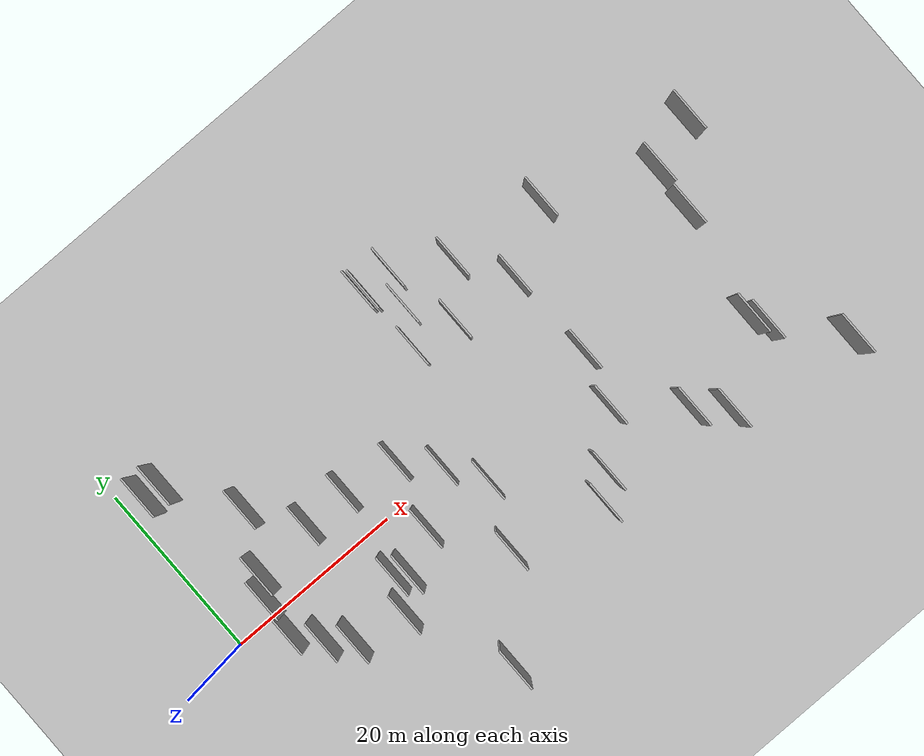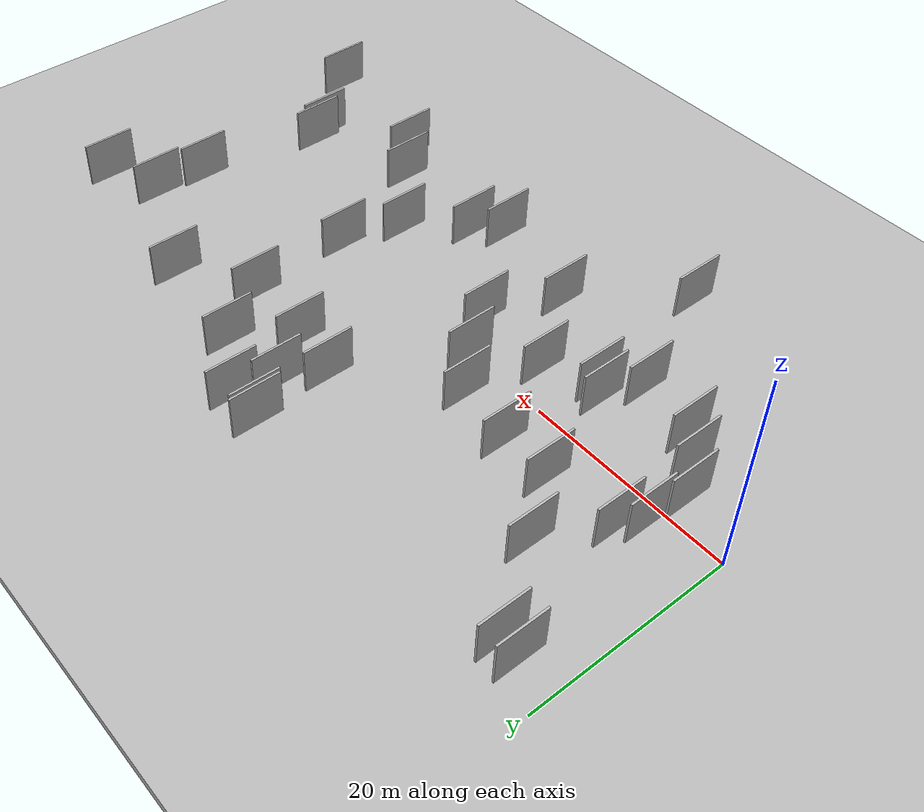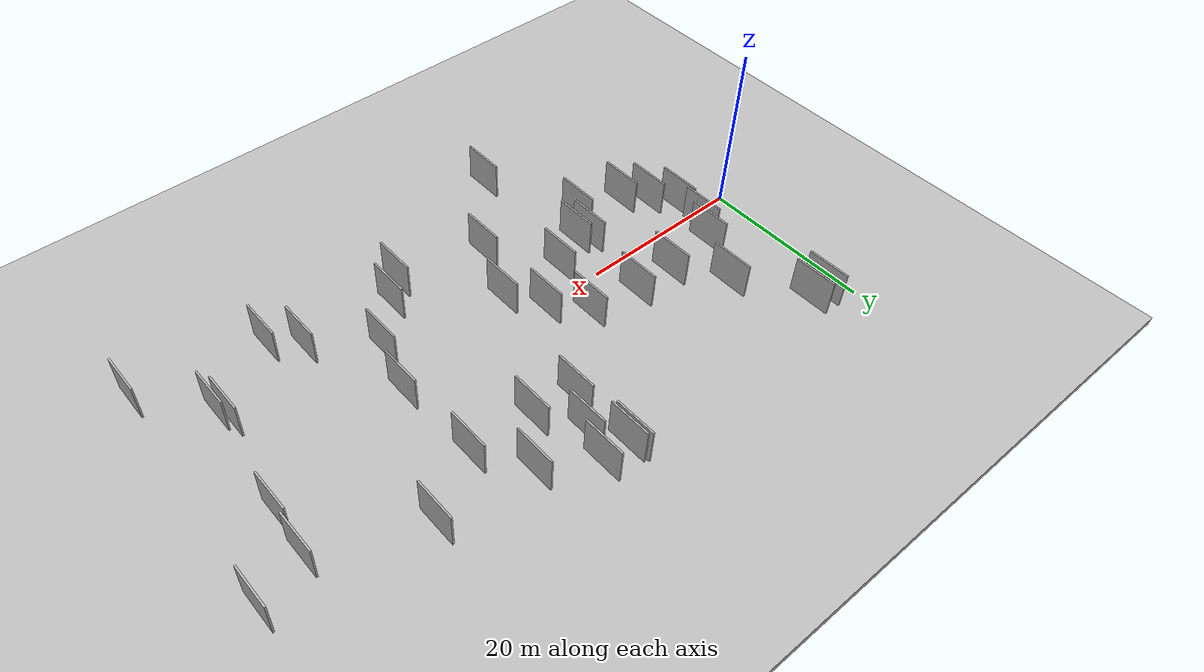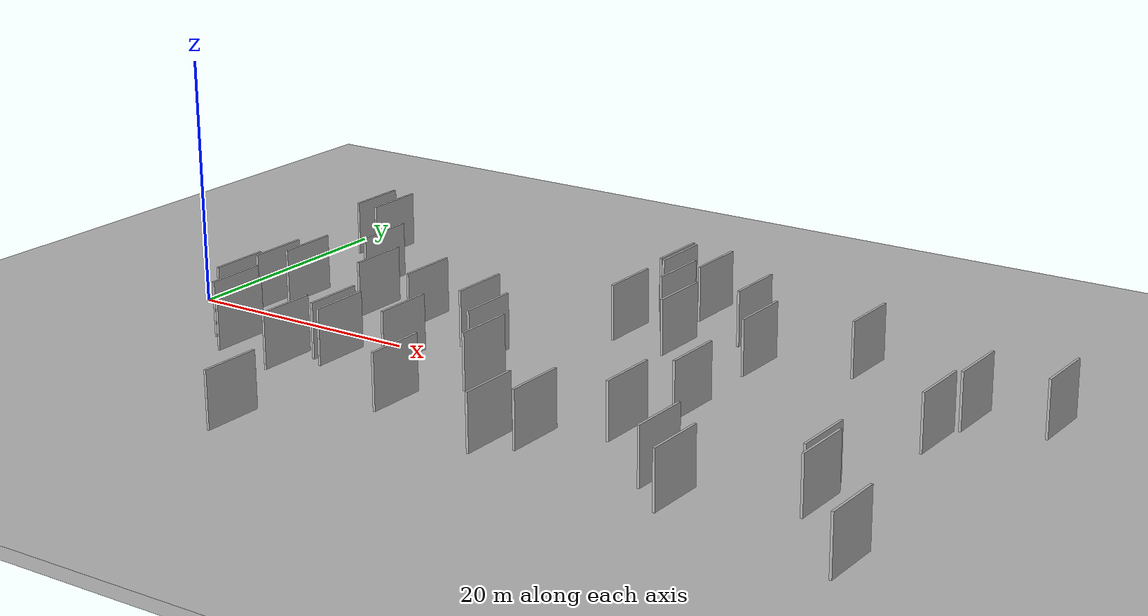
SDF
<?xml version="1.0" encoding="utf-8"?>

<sdf version="1.6">

   <world name="default">

      <gui fullscreen="0">

         <camera name="user_camera">

            <pose>-15 0 4.57585 0 0 0</pose>

            <view_controller>orbit</view_controller>

         </camera>

      </gui>

      <scene>

         <sky>

           <clouds>

             <speed>12</speed>

           </clouds>

         </sky>

         <ambient>0.4 0.4 0.4 1</ambient>

         <background>0.7 0.7 0.7 1</background>

         <shadows>1</shadows>

      </scene>

      <gravity>0 0 -9.8066</gravity>

      <magnetic_field>6e-06 2.3e-05 -4.2e-05</magnetic_field>

      <physics default="0" name="default_physics" type="ode">

         <ode>

            <solver>

               <type>quick</type>

               <iters>10</iters>

               <sor>1.0</sor>

               <use_dynamic_moi_rescaling>0</use_dynamic_moi_rescaling>

            </solver>

            <constraints>

               <cfm>0</cfm>

               <erp>0.2</erp>

               <contact_max_correcting_vel>100</contact_max_correcting_vel>

               <contact_surface_layer>0.001</contact_surface_layer>

            </constraints>

         </ode>

         <max_step_size>0.004</max_step_size>

         <real_time_factor>1</real_time_factor>

         <real_time_update_rate>250</real_time_update_rate>

      </physics>

      <light name="sun" type="directional">

         <cast_shadows>1</cast_shadows>

         <pose>0 0 10 0 0 0</pose>

         <diffuse>0.8 0.8 0.8 1</diffuse>

         <specular>0.2 0.2 0.2 1</specular>

         <attenuation>

            <range>1000</range>

            <constant>0.9</constant>

            <linear>0.01</linear>

            <quadratic>0.001</quadratic>

         </attenuation>

         <direction>-0.5 0.1 -0.9</direction>

      </light>

      <include>

         <name>ground_plane_1</name>

         <uri>model://HANNAS_ground_plane</uri>

         <pose>0 0 0  0 0 0</pose>

      </include>

      <include>

         <name>ground_plane_2</name>

         <uri>model://HANNAS_ground_plane</uri>

         <pose>100 0 0  0 0 0</pose>

      </include>

      <model name="HANNAS_wall_1">

         <static>1</static>

         <pose frame="">22.9563 -3.0702 0.0 0.000000 0.000000 1.570796</pose>

         <link name="link">

            <pose frame="">0 0 2.50 0 0 0</pose>

            <collision name="collision">

               <geometry>

                  <box>

                     <size>5.00 0.2 5.00</size>

                  </box>

               </geometry>

               <max_contacts>10</max_contacts>

               <surface>

                  <contact>

                     <ode/>

                  </contact>

                  <bounce/>

                  <friction>

                     <torsional>

                        <ode/>

                     </torsional>

                     <ode/>

                  </friction>

               </surface>

            </collision>

            <visual name="visual">

               <cast_shadows>0</cast_shadows>

               <geometry>

                  <box>

                     <size>5.00 0.2 5.00</size>

                  </box>

               </geometry>

               <material>

                  <script>

                     <uri>model://HANNAS_wall/materials/scripts</uri>

                     <uri>model://HANNAS_wall/materials/textures</uri>

                     <name>vrc/HANNAS_wall</name>

                  </script>

               </material>

            </visual>

            <self_collide>0</self_collide>

            <enable_wind>0</enable_wind>

            <kinematic>0</kinematic>

         </link>

      </model>

      <model name="HANNAS_wall_2">

         <static>1</static>

         <pose frame="">38.7629 10.8654 0.0 0.000000 0.000000 1.570796</pose>

         <link name="link">

            <pose frame="">0 0 2.50 0 0 0</pose>

            <collision name="collision">

               <geometry>

                  <box>

                     <size>5.00 0.2 5.00</size>

                  </box>

               </geometry>

               <max_contacts>10</max_contacts>

               <surface>

                  <contact>

                     <ode/>

                  </contact>

                  <bounce/>

                  <friction>

                     <torsional>

                        <ode/>

                     </torsional>

                     <ode/>

                  </friction>

               </surface>

            </collision>

            <visual name="visual">

               <cast_shadows>0</cast_shadows>

               <geometry>

                  <box>

                     <size>5.00 0.2 5.00</size>

                  </box>

               </geometry>

               <material>

                  <script>

                     <uri>model://HANNAS_wall/materials/scripts</uri>

                     <uri>model://HANNAS_wall/materials/textures</uri>

                     <name>vrc/HANNAS_wall</name>

                  </script>

               </material>

            </visual>

            <self_collide>0</self_collide>

            <enable_wind>0</enable_wind>

            <kinematic>0</kinematic>

         </link>

      </model>

      <model name="HANNAS_wall_3">

         <static>1</static>

         <pose frame="">18.9470 5.0243 0.0 0.000000 0.000000 1.570796</pose>

         <link name="link">

            <pose frame="">0 0 2.50 0 0 0</pose>

            <collision name="collision">

               <geometry>

                  <box>

                     <size>5.00 0.2 5.00</size>

                  </box>

               </geometry>

               <max_contacts>10</max_contacts>

               <surface>

                  <contact>

                     <ode/>

                  </contact>

                  <bounce/>

                  <friction>

                     <torsional>

                        <ode/>

                     </torsional>

                     <ode/>

                  </friction>

               </surface>

            </collision>

            <visual name="visual">

               <cast_shadows>0</cast_shadows>

               <geometry>

                  <box>

                     <size>5.00 0.2 5.00</size>

                  </box>

               </geometry>

               <material>

                  <script>

                     <uri>model://HANNAS_wall/materials/scripts</uri>

                     <uri>model://HANNAS_wall/materials/textures</uri>

                     <name>vrc/HANNAS_wall</name>

                  </script>

               </material>

            </visual>

            <self_collide>0</self_collide>

            <enable_wind>0</enable_wind>

            <kinematic>0</kinematic>

         </link>

      </model>

      <model name="HANNAS_wall_4">

         <static>1</static>

         <pose frame="">51.1061 -11.2452 0.0 0.000000 0.000000 1.570796</pose>

         <link name="link">

            <pose frame="">0 0 2.50 0 0 0</pose>

            <collision name="collision">

               <geometry>

                  <box>

                     <size>5.00 0.2 5.00</size>

                  </box>

               </geometry>

               <max_contacts>10</max_contacts>

               <surface>

                  <contact>

                     <ode/>

                  </contact>

                  <bounce/>

                  <friction>

                     <torsional>

                        <ode/>

                     </torsional>

                     <ode/>

                  </friction>

               </surface>

            </collision>

            <visual name="visual">

               <cast_shadows>0</cast_shadows>

               <geometry>

                  <box>

                     <size>5.00 0.2 5.00</size>

                  </box>

               </geometry>

               <material>

                  <script>

                     <uri>model://HANNAS_wall/materials/scripts</uri>

                     <uri>model://HANNAS_wall/materials/textures</uri>

                     <name>vrc/HANNAS_wall</name>

                  </script>

               </material>

            </visual>

            <self_collide>0</self_collide>

            <enable_wind>0</enable_wind>

            <kinematic>0</kinematic>

         </link>

      </model>

      <model name="HANNAS_wall_5">

         <static>1</static>

         <pose frame="">35.7818 15.4365 0.0 0.000000 0.000000 1.570796</pose>

         <link name="link">

            <pose frame="">0 0 2.50 0 0 0</pose>

            <collision name="collision">

               <geometry>

                  <box>

                     <size>5.00 0.2 5.00</size>

                  </box>

               </geometry>

               <max_contacts>10</max_contacts>

               <surface>

                  <contact>

                     <ode/>

                  </contact>

                  <bounce/>

                  <friction>

                     <torsional>

                        <ode/>

                     </torsional>

                     <ode/>

                  </friction>

               </surface>

            </collision>

            <visual name="visual">

               <cast_shadows>0</cast_shadows>

               <geometry>

                  <box>

                     <size>5.00 0.2 5.00</size>

                  </box>

               </geometry>

               <material>

                  <script>

                     <uri>model://HANNAS_wall/materials/scripts</uri>

                     <uri>model://HANNAS_wall/materials/textures</uri>

                     <name>vrc/HANNAS_wall</name>

                  </script>

               </material>

            </visual>

            <self_collide>0</self_collide>

            <enable_wind>0</enable_wind>

            <kinematic>0</kinematic>

         </link>

      </model>

      <model name="HANNAS_wall_6">

         <static>1</static>

         <pose frame="">69.9713 11.4624 0.0 0.000000 0.000000 1.570796</pose>

         <link name="link">

            <pose frame="">0 0 2.50 0 0 0</pose>

            <collision name="collision">

               <geometry>

                  <box>

                     <size>5.00 0.2 5.00</size>

                  </box>

               </geometry>

               <max_contacts>10</max_contacts>

               <surface>

                  <contact>

                     <ode/>

                  </contact>

                  <bounce/>

                  <friction>

                     <torsional>

                        <ode/>

                     </torsional>

                     <ode/>

                  </friction>

               </surface>

            </collision>

            <visual name="visual">

               <cast_shadows>0</cast_shadows>

               <geometry>

                  <box>

                     <size>5.00 0.2 5.00</size>

                  </box>

               </geometry>

               <material>

                  <script>

                     <uri>model://HANNAS_wall/materials/scripts</uri>

                     <uri>model://HANNAS_wall/materials/textures</uri>

                     <name>vrc/HANNAS_wall</name>

                  </script>

               </material>

            </visual>

            <self_collide>0</self_collide>

            <enable_wind>0</enable_wind>

            <kinematic>0</kinematic>

         </link>

      </model>

      <model name="HANNAS_wall_7">

         <static>1</static>

         <pose frame="">13.9097 5.0769 0.0 0.000000 0.000000 1.570796</pose>

         <link name="link">

            <pose frame="">0 0 2.50 0 0 0</pose>

            <collision name="collision">

               <geometry>

                  <box>

                     <size>5.00 0.2 5.00</size>

                  </box>

               </geometry>

               <max_contacts>10</max_contacts>

               <surface>

                  <contact>

                     <ode/>

                  </contact>

                  <bounce/>

                  <friction>

                     <torsional>

                        <ode/>

                     </torsional>

                     <ode/>

                  </friction>

               </surface>

            </collision>

            <visual name="visual">

               <cast_shadows>0</cast_shadows>

               <geometry>

                  <box>

                     <size>5.00 0.2 5.00</size>

                  </box>

               </geometry>

               <material>

                  <script>

                     <uri>model://HANNAS_wall/materials/scripts</uri>

                     <uri>model://HANNAS_wall/materials/textures</uri>

                     <name>vrc/HANNAS_wall</name>

                  </script>

               </material>

            </visual>

            <self_collide>0</self_collide>

            <enable_wind>0</enable_wind>

            <kinematic>0</kinematic>

         </link>

      </model>

      <model name="HANNAS_wall_8">

         <static>1</static>

         <pose frame="">24.8681 3.9814 0.0 0.000000 0.000000 1.570796</pose>

         <link name="link">

            <pose frame="">0 0 2.50 0 0 0</pose>

            <collision name="collision">

               <geometry>

                  <box>

                     <size>5.00 0.2 5.00</size>

                  </box>

               </geometry>

               <max_contacts>10</max_contacts>

               <surface>

                  <contact>

                     <ode/>

                  </contact>

                  <bounce/>

                  <friction>

                     <torsional>

                        <ode/>

                     </torsional>

                     <ode/>

                  </friction>

               </surface>

            </collision>

            <visual name="visual">

               <cast_shadows>0</cast_shadows>

               <geometry>

                  <box>

                     <size>5.00 0.2 5.00</size>

                  </box>

               </geometry>

               <material>

                  <script>

                     <uri>model://HANNAS_wall/materials/scripts</uri>

                     <uri>model://HANNAS_wall/materials/textures</uri>

                     <name>vrc/HANNAS_wall</name>

                  </script>

               </material>

            </visual>

            <self_collide>0</self_collide>

            <enable_wind>0</enable_wind>

            <kinematic>0</kinematic>

         </link>

      </model>

      <model name="HANNAS_wall_9">

         <static>1</static>

         <pose frame="">53.1566 14.5013 0.0 0.000000 0.000000 1.570796</pose>

         <link name="link">

            <pose frame="">0 0 2.50 0 0 0</pose>

            <collision name="collision">

               <geometry>

                  <box>

                     <size>5.00 0.2 5.00</size>

                  </box>

               </geometry>

               <max_contacts>10</max_contacts>

               <surface>

                  <contact>

                     <ode/>

                  </contact>

                  <bounce/>

                  <friction>

                     <torsional>

                        <ode/>

                     </torsional>

                     <ode/>

                  </friction>

               </surface>

            </collision>

            <visual name="visual">

               <cast_shadows>0</cast_shadows>

               <geometry>

                  <box>

                     <size>5.00 0.2 5.00</size>

                  </box>

               </geometry>

               <material>

                  <script>

                     <uri>model://HANNAS_wall/materials/scripts</uri>

                     <uri>model://HANNAS_wall/materials/textures</uri>

                     <name>vrc/HANNAS_wall</name>

                  </script>

               </material>

            </visual>

            <self_collide>0</self_collide>

            <enable_wind>0</enable_wind>

            <kinematic>0</kinematic>

         </link>

      </model>

      <model name="HANNAS_wall_10">

         <static>1</static>

         <pose frame="">7.1223 4.2922 0.0 0.000000 0.000000 1.570796</pose>

         <link name="link">

            <pose frame="">0 0 2.50 0 0 0</pose>

            <collision name="collision">

               <geometry>

                  <box>

                     <size>5.00 0.2 5.00</size>

                  </box>

               </geometry>

               <max_contacts>10</max_contacts>

               <surface>

                  <contact>

                     <ode/>

                  </contact>

                  <bounce/>

                  <friction>

                     <torsional>

                        <ode/>

                     </torsional>

                     <ode/>

                  </friction>

               </surface>

            </collision>

            <visual name="visual">

               <cast_shadows>0</cast_shadows>

               <geometry>

                  <box>

                     <size>5.00 0.2 5.00</size>

                  </box>

               </geometry>

               <material>

                  <script>

                     <uri>model://HANNAS_wall/materials/scripts</uri>

                     <uri>model://HANNAS_wall/materials/textures</uri>

                     <name>vrc/HANNAS_wall</name>

                  </script>

               </material>

            </visual>

            <self_collide>0</self_collide>

            <enable_wind>0</enable_wind>

            <kinematic>0</kinematic>

         </link>

      </model>

      <model name="HANNAS_wall_11">

         <static>1</static>

         <pose frame="">30.8097 -3.4372 0.0 0.000000 0.000000 1.570796</pose>

         <link name="link">

            <pose frame="">0 0 2.50 0 0 0</pose>

            <collision name="collision">

               <geometry>

                  <box>

                     <size>5.00 0.2 5.00</size>

                  </box>

               </geometry>

               <max_contacts>10</max_contacts>

               <surface>

                  <contact>

                     <ode/>

                  </contact>

                  <bounce/>

                  <friction>

                     <torsional>

                        <ode/>

                     </torsional>

                     <ode/>

                  </friction>

               </surface>

            </collision>

            <visual name="visual">

               <cast_shadows>0</cast_shadows>

               <geometry>

                  <box>

                     <size>5.00 0.2 5.00</size>

                  </box>

               </geometry>

               <material>

                  <script>

                     <uri>model://HANNAS_wall/materials/scripts</uri>

                     <uri>model://HANNAS_wall/materials/textures</uri>

                     <name>vrc/HANNAS_wall</name>

                  </script>

               </material>

            </visual>

            <self_collide>0</self_collide>

            <enable_wind>0</enable_wind>

            <kinematic>0</kinematic>

         </link>

      </model>

      <model name="HANNAS_wall_12">

         <static>1</static>

         <pose frame="">27.9928 -10.2958 0.0 0.000000 0.000000 1.570796</pose>

         <link name="link">

            <pose frame="">0 0 2.50 0 0 0</pose>

            <collision name="collision">

               <geometry>

                  <box>

                     <size>5.00 0.2 5.00</size>

                  </box>

               </geometry>

               <max_contacts>10</max_contacts>

               <surface>

                  <contact>

                     <ode/>

                  </contact>

                  <bounce/>

                  <friction>

                     <torsional>

                        <ode/>

                     </torsional>

                     <ode/>

                  </friction>

               </surface>

            </collision>

            <visual name="visual">

               <cast_shadows>0</cast_shadows>

               <geometry>

                  <box>

                     <size>5.00 0.2 5.00</size>

                  </box>

               </geometry>

               <material>

                  <script>

                     <uri>model://HANNAS_wall/materials/scripts</uri>

                     <uri>model://HANNAS_wall/materials/textures</uri>

                     <name>vrc/HANNAS_wall</name>

                  </script>

               </material>

            </visual>

            <self_collide>0</self_collide>

            <enable_wind>0</enable_wind>

            <kinematic>0</kinematic>

         </link>

      </model>

      <model name="HANNAS_wall_13">

         <static>1</static>

         <pose frame="">37.0108 19.1223 0.0 0.000000 0.000000 1.570796</pose>

         <link name="link">

            <pose frame="">0 0 2.50 0 0 0</pose>

            <collision name="collision">

               <geometry>

                  <box>

                     <size>5.00 0.2 5.00</size>

                  </box>

               </geometry>

               <max_contacts>10</max_contacts>

               <surface>

                  <contact>

                     <ode/>

                  </contact>

                  <bounce/>

                  <friction>

                     <torsional>

                        <ode/>

                     </torsional>

                     <ode/>

                  </friction>

               </surface>

            </collision>

            <visual name="visual">

               <cast_shadows>0</cast_shadows>

               <geometry>

                  <box>

                     <size>5.00 0.2 5.00</size>

                  </box>

               </geometry>

               <material>

                  <script>

                     <uri>model://HANNAS_wall/materials/scripts</uri>

                     <uri>model://HANNAS_wall/materials/textures</uri>

                     <name>vrc/HANNAS_wall</name>

                  </script>

               </material>

            </visual>

            <self_collide>0</self_collide>

            <enable_wind>0</enable_wind>

            <kinematic>0</kinematic>

         </link>

      </model>

      <model name="HANNAS_wall_14">

         <static>1</static>

         <pose frame="">33.6783 19.0522 0.0 0.000000 0.000000 1.570796</pose>

         <link name="link">

            <pose frame="">0 0 2.50 0 0 0</pose>

            <collision name="collision">

               <geometry>

                  <box>

                     <size>5.00 0.2 5.00</size>

                  </box>

               </geometry>

               <max_contacts>10</max_contacts>

               <surface>

                  <contact>

                     <ode/>

                  </contact>

                  <bounce/>

                  <friction>

                     <torsional>

                        <ode/>

                     </torsional>

                     <ode/>

                  </friction>

               </surface>

            </collision>

            <visual name="visual">

               <cast_shadows>0</cast_shadows>

               <geometry>

                  <box>

                     <size>5.00 0.2 5.00</size>

                  </box>

               </geometry>

               <material>

                  <script>

                     <uri>model://HANNAS_wall/materials/scripts</uri>

                     <uri>model://HANNAS_wall/materials/textures</uri>

                     <name>vrc/HANNAS_wall</name>

                  </script>

               </material>

            </visual>

            <self_collide>0</self_collide>

            <enable_wind>0</enable_wind>

            <kinematic>0</kinematic>

         </link>

      </model>

      <model name="HANNAS_wall_15">

         <static>1</static>

         <pose frame="">5.9196 2.0860 0.0 0.000000 0.000000 1.570796</pose>

         <link name="link">

            <pose frame="">0 0 2.50 0 0 0</pose>

            <collision name="collision">

               <geometry>

                  <box>

                     <size>5.00 0.2 5.00</size>

                  </box>

               </geometry>

               <max_contacts>10</max_contacts>

               <surface>

                  <contact>

                     <ode/>

                  </contact>

                  <bounce/>

                  <friction>

                     <torsional>

                        <ode/>

                     </torsional>

                     <ode/>

                  </friction>

               </surface>

            </collision>

            <visual name="visual">

               <cast_shadows>0</cast_shadows>

               <geometry>

                  <box>

                     <size>5.00 0.2 5.00</size>

                  </box>

               </geometry>

               <material>

                  <script>

                     <uri>model://HANNAS_wall/materials/scripts</uri>

                     <uri>model://HANNAS_wall/materials/textures</uri>

                     <name>vrc/HANNAS_wall</name>

                  </script>

               </material>

            </visual>

            <self_collide>0</self_collide>

            <enable_wind>0</enable_wind>

            <kinematic>0</kinematic>

         </link>

      </model>

      <model name="HANNAS_wall_16">

         <static>1</static>

         <pose frame="">61.6503 -8.0209 0.0 0.000000 0.000000 1.570796</pose>

         <link name="link">

            <pose frame="">0 0 2.50 0 0 0</pose>

            <collision name="collision">

               <geometry>

                  <box>

                     <size>5.00 0.2 5.00</size>

                  </box>

               </geometry>

               <max_contacts>10</max_contacts>

               <surface>

                  <contact>

                     <ode/>

                  </contact>

                  <bounce/>

                  <friction>

                     <torsional>

                        <ode/>

                     </torsional>

                     <ode/>

                  </friction>

               </surface>

            </collision>

            <visual name="visual">

               <cast_shadows>0</cast_shadows>

               <geometry>

                  <box>

                     <size>5.00 0.2 5.00</size>

                  </box>

               </geometry>

               <material>

                  <script>

                     <uri>model://HANNAS_wall/materials/scripts</uri>

                     <uri>model://HANNAS_wall/materials/textures</uri>

                     <name>vrc/HANNAS_wall</name>

                  </script>

               </material>

            </visual>

            <self_collide>0</self_collide>

            <enable_wind>0</enable_wind>

            <kinematic>0</kinematic>

         </link>

      </model>

      <model name="HANNAS_wall_17">

         <static>1</static>

         <pose frame="">15.7785 -8.1701 0.0 0.000000 0.000000 1.570796</pose>

         <link name="link">

            <pose frame="">0 0 2.50 0 0 0</pose>

            <collision name="collision">

               <geometry>

                  <box>

                     <size>5.00 0.2 5.00</size>

                  </box>

               </geometry>

               <max_contacts>10</max_contacts>

               <surface>

                  <contact>

                     <ode/>

                  </contact>

                  <bounce/>

                  <friction>

                     <torsional>

                        <ode/>

                     </torsional>

                     <ode/>

                  </friction>

               </surface>

            </collision>

            <visual name="visual">

               <cast_shadows>0</cast_shadows>

               <geometry>

                  <box>

                     <size>5.00 0.2 5.00</size>

                  </box>

               </geometry>

               <material>

                  <script>

                     <uri>model://HANNAS_wall/materials/scripts</uri>

                     <uri>model://HANNAS_wall/materials/textures</uri>

                     <name>vrc/HANNAS_wall</name>

                  </script>

               </material>

            </visual>

            <self_collide>0</self_collide>

            <enable_wind>0</enable_wind>

            <kinematic>0</kinematic>

         </link>

      </model>

      <model name="HANNAS_wall_18">

         <static>1</static>

         <pose frame="">5.5306 -2.0365 0.0 0.000000 0.000000 1.570796</pose>

         <link name="link">

            <pose frame="">0 0 2.50 0 0 0</pose>

            <collision name="collision">

               <geometry>

                  <box>

                     <size>5.00 0.2 5.00</size>

                  </box>

               </geometry>

               <max_contacts>10</max_contacts>

               <surface>

                  <contact>

                     <ode/>

                  </contact>

                  <bounce/>

                  <friction>

                     <torsional>

                        <ode/>

                     </torsional>

                     <ode/>

                  </friction>

               </surface>

            </collision>

            <visual name="visual">

               <cast_shadows>0</cast_shadows>

               <geometry>

                  <box>

                     <size>5.00 0.2 5.00</size>

                  </box>

               </geometry>

               <material>

                  <script>

                     <uri>model://HANNAS_wall/materials/scripts</uri>

                     <uri>model://HANNAS_wall/materials/textures</uri>

                     <name>vrc/HANNAS_wall</name>

                  </script>

               </material>

            </visual>

            <self_collide>0</self_collide>

            <enable_wind>0</enable_wind>

            <kinematic>0</kinematic>

         </link>

      </model>

      <model name="HANNAS_wall_19">

         <static>1</static>

         <pose frame="">17.3211 -4.4885 0.0 0.000000 0.000000 1.570796</pose>

         <link name="link">

            <pose frame="">0 0 2.50 0 0 0</pose>

            <collision name="collision">

               <geometry>

                  <box>

                     <size>5.00 0.2 5.00</size>

                  </box>

               </geometry>

               <max_contacts>10</max_contacts>

               <surface>

                  <contact>

                     <ode/>

                  </contact>

                  <bounce/>

                  <friction>

                     <torsional>

                        <ode/>

                     </torsional>

                     <ode/>

                  </friction>

               </surface>

            </collision>

            <visual name="visual">

               <cast_shadows>0</cast_shadows>

               <geometry>

                  <box>

                     <size>5.00 0.2 5.00</size>

                  </box>

               </geometry>

               <material>

                  <script>

                     <uri>model://HANNAS_wall/materials/scripts</uri>

                     <uri>model://HANNAS_wall/materials/textures</uri>

                     <name>vrc/HANNAS_wall</name>

                  </script>

               </material>

            </visual>

            <self_collide>0</self_collide>

            <enable_wind>0</enable_wind>

            <kinematic>0</kinematic>

         </link>

      </model>

      <model name="HANNAS_wall_20">

         <static>1</static>

         <pose frame="">5.2553 17.7814 0.0 0.000000 0.000000 1.570796</pose>

         <link name="link">

            <pose frame="">0 0 2.50 0 0 0</pose>

            <collision name="collision">

               <geometry>

                  <box>

                     <size>5.00 0.2 5.00</size>

                  </box>

               </geometry>

               <max_contacts>10</max_contacts>

               <surface>

                  <contact>

                     <ode/>

                  </contact>

                  <bounce/>

                  <friction>

                     <torsional>

                        <ode/>

                     </torsional>

                     <ode/>

                  </friction>

               </surface>

            </collision>

            <visual name="visual">

               <cast_shadows>0</cast_shadows>

               <geometry>

                  <box>

                     <size>5.00 0.2 5.00</size>

                  </box>

               </geometry>

               <material>

                  <script>

                     <uri>model://HANNAS_wall/materials/scripts</uri>

                     <uri>model://HANNAS_wall/materials/textures</uri>

                     <name>vrc/HANNAS_wall</name>

                  </script>

               </material>

            </visual>

            <self_collide>0</self_collide>

            <enable_wind>0</enable_wind>

            <kinematic>0</kinematic>

         </link>

      </model>

      <model name="HANNAS_wall_21">

         <static>1</static>

         <pose frame="">33.7772 11.6206 0.0 0.000000 0.000000 1.570796</pose>

         <link name="link">

            <pose frame="">0 0 2.50 0 0 0</pose>

            <collision name="collision">

               <geometry>

                  <box>

                     <size>5.00 0.2 5.00</size>

                  </box>

               </geometry>

               <max_contacts>10</max_contacts>

               <surface>

                  <contact>

                     <ode/>

                  </contact>

                  <bounce/>

                  <friction>

                     <torsional>

                        <ode/>

                     </torsional>

                     <ode/>

                  </friction>

               </surface>

            </collision>

            <visual name="visual">

               <cast_shadows>0</cast_shadows>

               <geometry>

                  <box>

                     <size>5.00 0.2 5.00</size>

                  </box>

               </geometry>

               <material>

                  <script>

                     <uri>model://HANNAS_wall/materials/scripts</uri>

                     <uri>model://HANNAS_wall/materials/textures</uri>

                     <name>vrc/HANNAS_wall</name>

                  </script>

               </material>

            </visual>

            <self_collide>0</self_collide>

            <enable_wind>0</enable_wind>

            <kinematic>0</kinematic>

         </link>

      </model>

      <model name="HANNAS_wall_22">

         <static>1</static>

         <pose frame="">10.1636 10.4190 0.0 0.000000 0.000000 1.570796</pose>

         <link name="link">

            <pose frame="">0 0 2.50 0 0 0</pose>

            <collision name="collision">

               <geometry>

                  <box>

                     <size>5.00 0.2 5.00</size>

                  </box>

               </geometry>

               <max_contacts>10</max_contacts>

               <surface>

                  <contact>

                     <ode/>

                  </contact>

                  <bounce/>

                  <friction>

                     <torsional>

                        <ode/>

                     </torsional>

                     <ode/>

                  </friction>

               </surface>

            </collision>

            <visual name="visual">

               <cast_shadows>0</cast_shadows>

               <geometry>

                  <box>

                     <size>5.00 0.2 5.00</size>

                  </box>

               </geometry>

               <material>

                  <script>

                     <uri>model://HANNAS_wall/materials/scripts</uri>

                     <uri>model://HANNAS_wall/materials/textures</uri>

                     <name>vrc/HANNAS_wall</name>

                  </script>

               </material>

            </visual>

            <self_collide>0</self_collide>

            <enable_wind>0</enable_wind>

            <kinematic>0</kinematic>

         </link>

      </model>

      <model name="HANNAS_wall_23">

         <static>1</static>

         <pose frame="">68.1737 -16.3150 0.0 0.000000 0.000000 1.570796</pose>

         <link name="link">

            <pose frame="">0 0 2.50 0 0 0</pose>

            <collision name="collision">

               <geometry>

                  <box>

                     <size>5.00 0.2 5.00</size>

                  </box>

               </geometry>

               <max_contacts>10</max_contacts>

               <surface>

                  <contact>

                     <ode/>

                  </contact>

                  <bounce/>

                  <friction>

                     <torsional>

                        <ode/>

                     </torsional>

                     <ode/>

                  </friction>

               </surface>

            </collision>

            <visual name="visual">

               <cast_shadows>0</cast_shadows>

               <geometry>

                  <box>

                     <size>5.00 0.2 5.00</size>

                  </box>

               </geometry>

               <material>

                  <script>

                     <uri>model://HANNAS_wall/materials/scripts</uri>

                     <uri>model://HANNAS_wall/materials/textures</uri>

                     <name>vrc/HANNAS_wall</name>

                  </script>

               </material>

            </visual>

            <self_collide>0</self_collide>

            <enable_wind>0</enable_wind>

            <kinematic>0</kinematic>

         </link>

      </model>

      <model name="HANNAS_wall_24">

         <static>1</static>

         <pose frame="">28.1711 0.6319 0.0 0.000000 0.000000 1.570796</pose>

         <link name="link">

            <pose frame="">0 0 2.50 0 0 0</pose>

            <collision name="collision">

               <geometry>

                  <box>

                     <size>5.00 0.2 5.00</size>

                  </box>

               </geometry>

               <max_contacts>10</max_contacts>

               <surface>

                  <contact>

                     <ode/>

                  </contact>

                  <bounce/>

                  <friction>

                     <torsional>

                        <ode/>

                     </torsional>

                     <ode/>

                  </friction>

               </surface>

            </collision>

            <visual name="visual">

               <cast_shadows>0</cast_shadows>

               <geometry>

                  <box>

                     <size>5.00 0.2 5.00</size>

                  </box>

               </geometry>

               <material>

                  <script>

                     <uri>model://HANNAS_wall/materials/scripts</uri>

                     <uri>model://HANNAS_wall/materials/textures</uri>

                     <name>vrc/HANNAS_wall</name>

                  </script>

               </material>

            </visual>

            <self_collide>0</self_collide>

            <enable_wind>0</enable_wind>

            <kinematic>0</kinematic>

         </link>

      </model>

      <model name="HANNAS_wall_25">

         <static>1</static>

         <pose frame="">3.2652 17.8954 0.0 0.000000 0.000000 1.570796</pose>

         <link name="link">

            <pose frame="">0 0 2.50 0 0 0</pose>

            <collision name="collision">

               <geometry>

                  <box>

                     <size>5.00 0.2 5.00</size>

                  </box>

               </geometry>

               <max_contacts>10</max_contacts>

               <surface>

                  <contact>

                     <ode/>

                  </contact>

                  <bounce/>

                  <friction>

                     <torsional>

                        <ode/>

                     </torsional>

                     <ode/>

                  </friction>

               </surface>

            </collision>

            <visual name="visual">

               <cast_shadows>0</cast_shadows>

               <geometry>

                  <box>

                     <size>5.00 0.2 5.00</size>

                  </box>

               </geometry>

               <material>

                  <script>

                     <uri>model://HANNAS_wall/materials/scripts</uri>

                     <uri>model://HANNAS_wall/materials/textures</uri>

                     <name>vrc/HANNAS_wall</name>

                  </script>

               </material>

            </visual>

            <self_collide>0</self_collide>

            <enable_wind>0</enable_wind>

            <kinematic>0</kinematic>

         </link>

      </model>

      <model name="HANNAS_wall_26">

         <static>1</static>

         <pose frame="">33.2521 19.3257 0.0 0.000000 0.000000 1.570796</pose>

         <link name="link">

            <pose frame="">0 0 2.50 0 0 0</pose>

            <collision name="collision">

               <geometry>

                  <box>

                     <size>5.00 0.2 5.00</size>

                  </box>

               </geometry>

               <max_contacts>10</max_contacts>

               <surface>

                  <contact>

                     <ode/>

                  </contact>

                  <bounce/>

                  <friction>

                     <torsional>

                        <ode/>

                     </torsional>

                     <ode/>

                  </friction>

               </surface>

            </collision>

            <visual name="visual">

               <cast_shadows>0</cast_shadows>

               <geometry>

                  <box>

                     <size>5.00 0.2 5.00</size>

                  </box>

               </geometry>

               <material>

                  <script>

                     <uri>model://HANNAS_wall/materials/scripts</uri>

                     <uri>model://HANNAS_wall/materials/textures</uri>

                     <name>vrc/HANNAS_wall</name>

                  </script>

               </material>

            </visual>

            <self_collide>0</self_collide>

            <enable_wind>0</enable_wind>

            <kinematic>0</kinematic>

         </link>

      </model>

      <model name="HANNAS_wall_27">

         <static>1</static>

         <pose frame="">18.6194 -5.3043 0.0 0.000000 0.000000 1.570796</pose>

         <link name="link">

            <pose frame="">0 0 2.50 0 0 0</pose>

            <collision name="collision">

               <geometry>

                  <box>

                     <size>5.00 0.2 5.00</size>

                  </box>

               </geometry>

               <max_contacts>10</max_contacts>

               <surface>

                  <contact>

                     <ode/>

                  </contact>

                  <bounce/>

                  <friction>

                     <torsional>

                        <ode/>

                     </torsional>

                     <ode/>

                  </friction>

               </surface>

            </collision>

            <visual name="visual">

               <cast_shadows>0</cast_shadows>

               <geometry>

                  <box>

                     <size>5.00 0.2 5.00</size>

                  </box>

               </geometry>

               <material>

                  <script>

                     <uri>model://HANNAS_wall/materials/scripts</uri>

                     <uri>model://HANNAS_wall/materials/textures</uri>

                     <name>vrc/HANNAS_wall</name>

                  </script>

               </material>

            </visual>

            <self_collide>0</self_collide>

            <enable_wind>0</enable_wind>

            <kinematic>0</kinematic>

         </link>

      </model>

      <model name="HANNAS_wall_28">

         <static>1</static>

         <pose frame="">20.6102 -19.4701 0.0 0.000000 0.000000 1.570796</pose>

         <link name="link">

            <pose frame="">0 0 2.50 0 0 0</pose>

            <collision name="collision">

               <geometry>

                  <box>

                     <size>5.00 0.2 5.00</size>

                  </box>

               </geometry>

               <max_contacts>10</max_contacts>

               <surface>

                  <contact>

                     <ode/>

                  </contact>

                  <bounce/>

                  <friction>

                     <torsional>

                        <ode/>

                     </torsional>

                     <ode/>

                  </friction>

               </surface>

            </collision>

            <visual name="visual">

               <cast_shadows>0</cast_shadows>

               <geometry>

                  <box>

                     <size>5.00 0.2 5.00</size>

                  </box>

               </geometry>

               <material>

                  <script>

                     <uri>model://HANNAS_wall/materials/scripts</uri>

                     <uri>model://HANNAS_wall/materials/textures</uri>

                     <name>vrc/HANNAS_wall</name>

                  </script>

               </material>

            </visual>

            <self_collide>0</self_collide>

            <enable_wind>0</enable_wind>

            <kinematic>0</kinematic>

         </link>

      </model>

      <model name="HANNAS_wall_29">

         <static>1</static>

         <pose frame="">7.7153 -4.8693 0.0 0.000000 0.000000 1.570796</pose>

         <link name="link">

            <pose frame="">0 0 2.50 0 0 0</pose>

            <collision name="collision">

               <geometry>

                  <box>

                     <size>5.00 0.2 5.00</size>

                  </box>

               </geometry>

               <max_contacts>10</max_contacts>

               <surface>

                  <contact>

                     <ode/>

                  </contact>

                  <bounce/>

                  <friction>

                     <torsional>

                        <ode/>

                     </torsional>

                     <ode/>

                  </friction>

               </surface>

            </collision>

            <visual name="visual">

               <cast_shadows>0</cast_shadows>

               <geometry>

                  <box>

                     <size>5.00 0.2 5.00</size>

                  </box>

               </geometry>

               <material>

                  <script>

                     <uri>model://HANNAS_wall/materials/scripts</uri>

                     <uri>model://HANNAS_wall/materials/textures</uri>

                     <name>vrc/HANNAS_wall</name>

                  </script>

               </material>

            </visual>

            <self_collide>0</self_collide>

            <enable_wind>0</enable_wind>

            <kinematic>0</kinematic>

         </link>

      </model>

      <model name="HANNAS_wall_30">

         <static>1</static>

         <pose frame="">40.5118 -10.5580 0.0 0.000000 0.000000 1.570796</pose>

         <link name="link">

            <pose frame="">0 0 2.50 0 0 0</pose>

            <collision name="collision">

               <geometry>

                  <box>

                     <size>5.00 0.2 5.00</size>

                  </box>

               </geometry>

               <max_contacts>10</max_contacts>

               <surface>

                  <contact>

                     <ode/>

                  </contact>

                  <bounce/>

                  <friction>

                     <torsional>

                        <ode/>

                     </torsional>

                     <ode/>

                  </friction>

               </surface>

            </collision>

            <visual name="visual">

               <cast_shadows>0</cast_shadows>

               <geometry>

                  <box>

                     <size>5.00 0.2 5.00</size>

                  </box>

               </geometry>

               <material>

                  <script>

                     <uri>model://HANNAS_wall/materials/scripts</uri>

                     <uri>model://HANNAS_wall/materials/textures</uri>

                     <name>vrc/HANNAS_wall</name>

                  </script>

               </material>

            </visual>

            <self_collide>0</self_collide>

            <enable_wind>0</enable_wind>

            <kinematic>0</kinematic>

         </link>

      </model>

      <model name="HANNAS_wall_31">

         <static>1</static>

         <pose frame="">42.5882 15.7404 0.0 0.000000 0.000000 1.570796</pose>

         <link name="link">

            <pose frame="">0 0 2.50 0 0 0</pose>

            <collision name="collision">

               <geometry>

                  <box>

                     <size>5.00 0.2 5.00</size>

                  </box>

               </geometry>

               <max_contacts>10</max_contacts>

               <surface>

                  <contact>

                     <ode/>

                  </contact>

                  <bounce/>

                  <friction>

                     <torsional>

                        <ode/>

                     </torsional>

                     <ode/>

                  </friction>

               </surface>

            </collision>

            <visual name="visual">

               <cast_shadows>0</cast_shadows>

               <geometry>

                  <box>

                     <size>5.00 0.2 5.00</size>

                  </box>

               </geometry>

               <material>

                  <script>

                     <uri>model://HANNAS_wall/materials/scripts</uri>

                     <uri>model://HANNAS_wall/materials/textures</uri>

                     <name>vrc/HANNAS_wall</name>

                  </script>

               </material>

            </visual>

            <self_collide>0</self_collide>

            <enable_wind>0</enable_wind>

            <kinematic>0</kinematic>

         </link>

      </model>

      <model name="HANNAS_wall_32">

         <static>1</static>

         <pose frame="">46.6151 0.1556 0.0 0.000000 0.000000 1.570796</pose>

         <link name="link">

            <pose frame="">0 0 2.50 0 0 0</pose>

            <collision name="collision">

               <geometry>

                  <box>

                     <size>5.00 0.2 5.00</size>

                  </box>

               </geometry>

               <max_contacts>10</max_contacts>

               <surface>

                  <contact>

                     <ode/>

                  </contact>

                  <bounce/>

                  <friction>

                     <torsional>

                        <ode/>

                     </torsional>

                     <ode/>

                  </friction>

               </surface>

            </collision>

            <visual name="visual">

               <cast_shadows>0</cast_shadows>

               <geometry>

                  <box>

                     <size>5.00 0.2 5.00</size>

                  </box>

               </geometry>

               <material>

                  <script>

                     <uri>model://HANNAS_wall/materials/scripts</uri>

                     <uri>model://HANNAS_wall/materials/textures</uri>

                     <name>vrc/HANNAS_wall</name>

                  </script>

               </material>

            </visual>

            <self_collide>0</self_collide>

            <enable_wind>0</enable_wind>

            <kinematic>0</kinematic>

         </link>

      </model>

      <model name="HANNAS_wall_33">

         <static>1</static>

         <pose frame="">46.1743 10.3704 0.0 0.000000 0.000000 1.570796</pose>

         <link name="link">

            <pose frame="">0 0 2.50 0 0 0</pose>

            <collision name="collision">

               <geometry>

                  <box>

                     <size>5.00 0.2 5.00</size>

                  </box>

               </geometry>

               <max_contacts>10</max_contacts>

               <surface>

                  <contact>

                     <ode/>

                  </contact>

                  <bounce/>

                  <friction>

                     <torsional>

                        <ode/>

                     </torsional>

                     <ode/>

                  </friction>

               </surface>

            </collision>

            <visual name="visual">

               <cast_shadows>0</cast_shadows>

               <geometry>

                  <box>

                     <size>5.00 0.2 5.00</size>

                  </box>

               </geometry>

               <material>

                  <script>

                     <uri>model://HANNAS_wall/materials/scripts</uri>

                     <uri>model://HANNAS_wall/materials/textures</uri>

                     <name>vrc/HANNAS_wall</name>

                  </script>

               </material>

            </visual>

            <self_collide>0</self_collide>

            <enable_wind>0</enable_wind>

            <kinematic>0</kinematic>

         </link>

      </model>

      <model name="HANNAS_wall_34">

         <static>1</static>

         <pose frame="">54.0311 -13.9408 0.0 0.000000 0.000000 1.570796</pose>

         <link name="link">

            <pose frame="">0 0 2.50 0 0 0</pose>

            <collision name="collision">

               <geometry>

                  <box>

                     <size>5.00 0.2 5.00</size>

                  </box>

               </geometry>

               <max_contacts>10</max_contacts>

               <surface>

                  <contact>

                     <ode/>

                  </contact>

                  <bounce/>

                  <friction>

                     <torsional>

                        <ode/>

                     </torsional>

                     <ode/>

                  </friction>

               </surface>

            </collision>

            <visual name="visual">

               <cast_shadows>0</cast_shadows>

               <geometry>

                  <box>

                     <size>5.00 0.2 5.00</size>

                  </box>

               </geometry>

               <material>

                  <script>

                     <uri>model://HANNAS_wall/materials/scripts</uri>

                     <uri>model://HANNAS_wall/materials/textures</uri>

                     <name>vrc/HANNAS_wall</name>

                  </script>

               </material>

            </visual>

            <self_collide>0</self_collide>

            <enable_wind>0</enable_wind>

            <kinematic>0</kinematic>

         </link>

      </model>

      <model name="HANNAS_wall_35">

         <static>1</static>

         <pose frame="">64.3402 9.4521 0.0 0.000000 0.000000 1.570796</pose>

         <link name="link">

            <pose frame="">0 0 2.50 0 0 0</pose>

            <collision name="collision">

               <geometry>

                  <box>

                     <size>5.00 0.2 5.00</size>

                  </box>

               </geometry>

               <max_contacts>10</max_contacts>

               <surface>

                  <contact>

                     <ode/>

                  </contact>

                  <bounce/>

                  <friction>

                     <torsional>

                        <ode/>

                     </torsional>

                     <ode/>

                  </friction>

               </surface>

            </collision>

            <visual name="visual">

               <cast_shadows>0</cast_shadows>

               <geometry>

                  <box>

                     <size>5.00 0.2 5.00</size>

                  </box>

               </geometry>

               <material>

                  <script>

                     <uri>model://HANNAS_wall/materials/scripts</uri>

                     <uri>model://HANNAS_wall/materials/textures</uri>

                     <name>vrc/HANNAS_wall</name>

                  </script>

               </material>

            </visual>

            <self_collide>0</self_collide>

            <enable_wind>0</enable_wind>

            <kinematic>0</kinematic>

         </link>

      </model>

      <model name="HANNAS_wall_36">

         <static>1</static>

         <pose frame="">63.8783 4.3552 0.0 0.000000 0.000000 1.570796</pose>

         <link name="link">

            <pose frame="">0 0 2.50 0 0 0</pose>

            <collision name="collision">

               <geometry>

                  <box>

                     <size>5.00 0.2 5.00</size>

                  </box>

               </geometry>

               <max_contacts>10</max_contacts>

               <surface>

                  <contact>

                     <ode/>

                  </contact>

                  <bounce/>

                  <friction>

                     <torsional>

                        <ode/>

                     </torsional>

                     <ode/>

                  </friction>

               </surface>

            </collision>

            <visual name="visual">

               <cast_shadows>0</cast_shadows>

               <geometry>

                  <box>

                     <size>5.00 0.2 5.00</size>

                  </box>

               </geometry>

               <material>

                  <script>

                     <uri>model://HANNAS_wall/materials/scripts</uri>

                     <uri>model://HANNAS_wall/materials/textures</uri>

                     <name>vrc/HANNAS_wall</name>

                  </script>

               </material>

            </visual>

            <self_collide>0</self_collide>

            <enable_wind>0</enable_wind>

            <kinematic>0</kinematic>

         </link>

      </model>

      <model name="HANNAS_wall_37">

         <static>1</static>

         <pose frame="">44.9147 -5.6925 0.0 0.000000 0.000000 1.570796</pose>

         <link name="link">

            <pose frame="">0 0 2.50 0 0 0</pose>

            <collision name="collision">

               <geometry>

                  <box>

                     <size>5.00 0.2 5.00</size>

                  </box>

               </geometry>

               <max_contacts>10</max_contacts>

               <surface>

                  <contact>

                     <ode/>

                  </contact>

                  <bounce/>

                  <friction>

                     <torsional>

                        <ode/>

                     </torsional>

                     <ode/>

                  </friction>

               </surface>

            </collision>

            <visual name="visual">

               <cast_shadows>0</cast_shadows>

               <geometry>

                  <box>

                     <size>5.00 0.2 5.00</size>

                  </box>

               </geometry>

               <material>

                  <script>

                     <uri>model://HANNAS_wall/materials/scripts</uri>

                     <uri>model://HANNAS_wall/materials/textures</uri>

                     <name>vrc/HANNAS_wall</name>

                  </script>

               </material>

            </visual>

            <self_collide>0</self_collide>

            <enable_wind>0</enable_wind>

            <kinematic>0</kinematic>

         </link>

      </model>

      <model name="HANNAS_wall_38">

         <static>1</static>

         <pose frame="">62.3321 -9.4436 0.0 0.000000 0.000000 1.570796</pose>

         <link name="link">

            <pose frame="">0 0 2.50 0 0 0</pose>

            <collision name="collision">

               <geometry>

                  <box>

                     <size>5.00 0.2 5.00</size>

                  </box>

               </geometry>

               <max_contacts>10</max_contacts>

               <surface>

                  <contact>

                     <ode/>

                  </contact>

                  <bounce/>

                  <friction>

                     <torsional>

                        <ode/>

                     </torsional>

                     <ode/>

                  </friction>

               </surface>

            </collision>

            <visual name="visual">

               <cast_shadows>0</cast_shadows>

               <geometry>

                  <box>

                     <size>5.00 0.2 5.00</size>

                  </box>

               </geometry>

               <material>

                  <script>

                     <uri>model://HANNAS_wall/materials/scripts</uri>

                     <uri>model://HANNAS_wall/materials/textures</uri>

                     <name>vrc/HANNAS_wall</name>

                  </script>

               </material>

            </visual>

            <self_collide>0</self_collide>

            <enable_wind>0</enable_wind>

            <kinematic>0</kinematic>

         </link>

      </model>

      <model name="HANNAS_wall_39">

         <static>1</static>

         <pose frame="">10.0093 -7.0078 0.0 0.000000 0.000000 1.570796</pose>

         <link name="link">

            <pose frame="">0 0 2.50 0 0 0</pose>

            <collision name="collision">

               <geometry>

                  <box>

                     <size>5.00 0.2 5.00</size>

                  </box>

               </geometry>

               <max_contacts>10</max_contacts>

               <surface>

                  <contact>

                     <ode/>

                  </contact>

                  <bounce/>

                  <friction>

                     <torsional>

                        <ode/>

                     </torsional>

                     <ode/>

                  </friction>

               </surface>

            </collision>

            <visual name="visual">

               <cast_shadows>0</cast_shadows>

               <geometry>

                  <box>

                     <size>5.00 0.2 5.00</size>

                  </box>

               </geometry>

               <material>

                  <script>

                     <uri>model://HANNAS_wall/materials/scripts</uri>

                     <uri>model://HANNAS_wall/materials/textures</uri>

                     <name>vrc/HANNAS_wall</name>

                  </script>

               </material>

            </visual>

            <self_collide>0</self_collide>

            <enable_wind>0</enable_wind>

            <kinematic>0</kinematic>

         </link>

      </model>

      <model name="HANNAS_wall_40">

         <static>1</static>

         <pose frame="">38.1944 -12.7603 0.0 0.000000 0.000000 1.570796</pose>

         <link name="link">

            <pose frame="">0 0 2.50 0 0 0</pose>

            <collision name="collision">

               <geometry>

                  <box>

                     <size>5.00 0.2 5.00</size>

                  </box>

               </geometry>

               <max_contacts>10</max_contacts>

               <surface>

                  <contact>

                     <ode/>

                  </contact>

                  <bounce/>

                  <friction>

                     <torsional>

                        <ode/>

                     </torsional>

                     <ode/>

                  </friction>

               </surface>

            </collision>

            <visual name="visual">

               <cast_shadows>0</cast_shadows>

               <geometry>

                  <box>

                     <size>5.00 0.2 5.00</size>

                  </box>

               </geometry>

               <material>

                  <script>

                     <uri>model://HANNAS_wall/materials/scripts</uri>

                     <uri>model://HANNAS_wall/materials/textures</uri>

                     <name>vrc/HANNAS_wall</name>

                  </script>

               </material>

            </visual>

            <self_collide>0</self_collide>

            <enable_wind>0</enable_wind>

            <kinematic>0</kinematic>

         </link>

      </model>

   </world>

</sdf>
